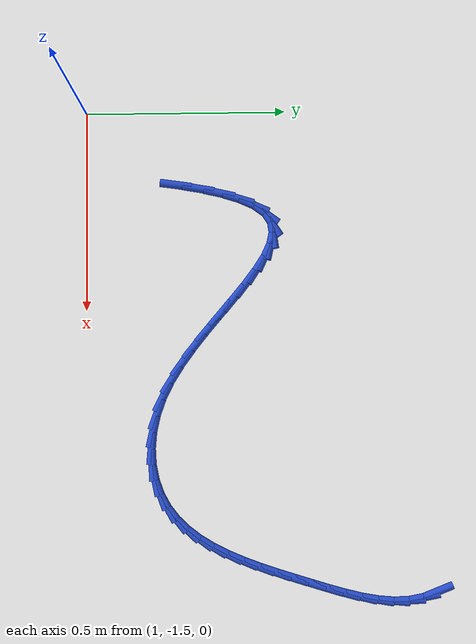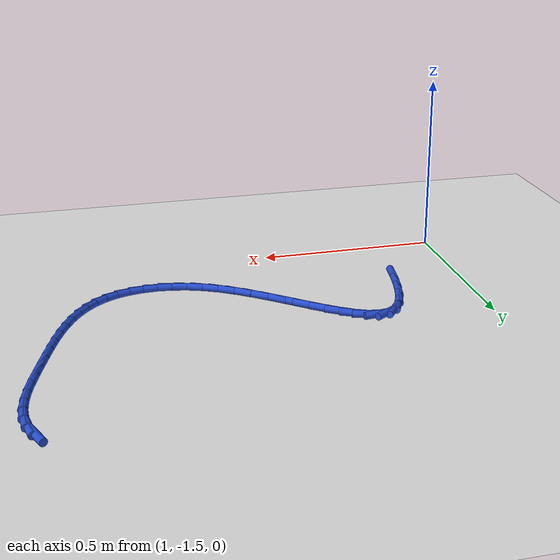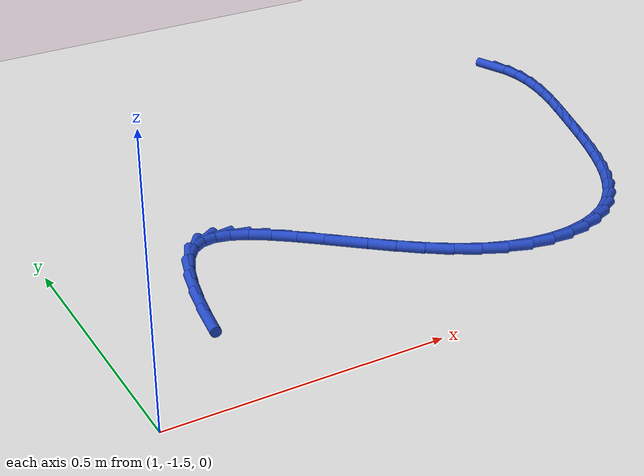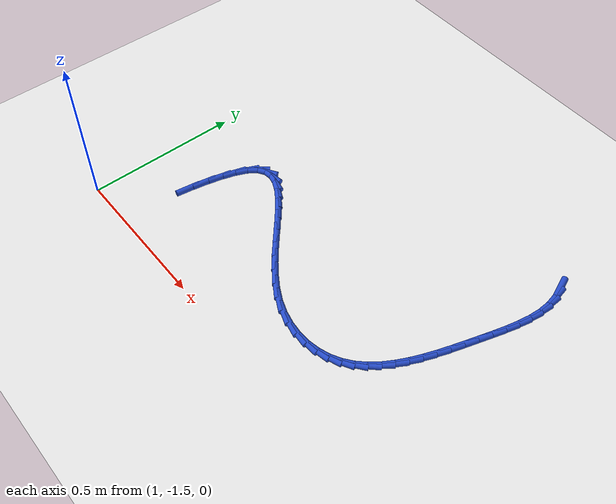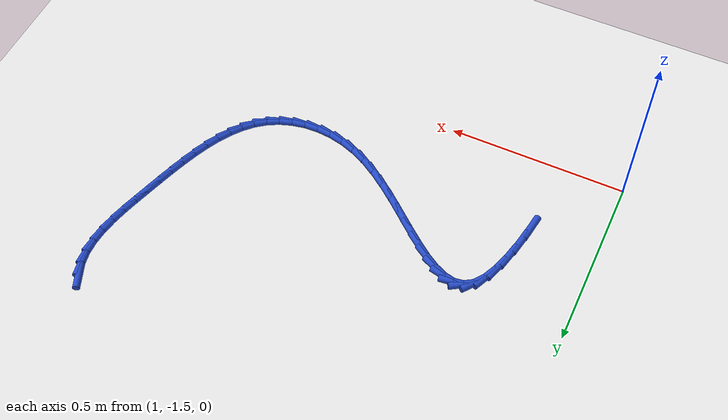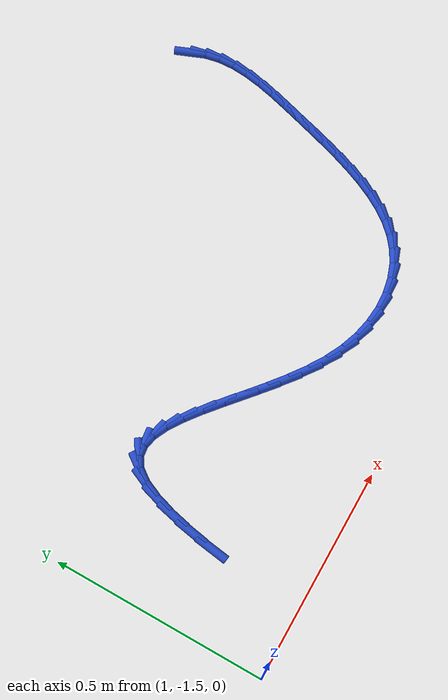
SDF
<sdf version="1.6">
 <world name="default">
  <model name="ground_plane">
   <static>1</static>
   <link name="link">
    <collision name="collision">
     <geometry><plane><normal>0 0 1</normal><size>100 100</size></plane></geometry>
     <surface><friction><ode><mu>100</mu><mu2>50</mu2></ode></friction></surface>
    </collision>
    <visual name="visual">
     <cast_shadows>0</cast_shadows>
     <geometry><plane><normal>0 0 1</normal><size>100 100</size></plane></geometry>
     <material>
      <script><uri>file://media/materials/scripts/gazebo.material</uri><name>Gazebo/WhiteGlow</name></script>
     </material>
    </visual>
   </link>
  </model>
  <model name="line">
   <link name="link_152">
    <pose>2.199923777006037 -0.6427057643925771 0.01 0 1.57 -1.1984474842574275</pose>
    <collision name="collision">
     <geometry><cylinder><radius>0.01</radius><length>0.08</length></cylinder></geometry>
    </collision>
    <visual name="visual">
     <material>
      <script><name>Gazebo/Blue</name><uri>file://media/materials/scripts/gazebo.material</uri></script>
     </material>
     <geometry><cylinder><radius>0.01</radius><length>0.08</length></cylinder></geometry>
    </visual>
   </link>
   <link name="link_153">
    <pose>2.213199202690414 -0.6766958289432661 0.01 0 1.57 -1.3852260153325362</pose>
    <collision name="collision">
     <geometry><cylinder><radius>0.01</radius><length>0.08</length></cylinder></geometry>
    </collision>
    <visual name="visual">
     <material>
      <script><name>Gazebo/Blue</name><uri>file://media/materials/scripts/gazebo.material</uri></script>
     </material>
     <geometry><cylinder><radius>0.01</radius><length>0.08</length></cylinder></geometry>
    </visual>
   </link>
   <link name="link_154">
    <pose>2.2199326378654525 -0.7125634495437034 0.01 0 1.57 -1.5409187809357663</pose>
    <collision name="collision">
     <geometry><cylinder><radius>0.01</radius><length>0.08</length></cylinder></geometry>
    </collision>
    <visual name="visual">
     <material>
      <script><name>Gazebo/Blue</name><uri>file://media/materials/scripts/gazebo.material</uri></script>
     </material>
     <geometry><cylinder><radius>0.01</radius><length>0.08</length></cylinder></geometry>
    </visual>
   </link>
   <link name="link_155">
    <pose>2.2210532144648187 -0.7500579328793634 0.01 0 1.57 1.479511927666274</pose>
    <collision name="collision">
     <geometry><cylinder><radius>0.01</radius><length>0.08</length></cylinder></geometry>
    </collision>
    <visual name="visual">
     <material>
      <script><name>Gazebo/Blue</name><uri>file://media/materials/scripts/gazebo.material</uri></script>
     </material>
     <geometry><cylinder><radius>0.01</radius><length>0.08</length></cylinder></geometry>
    </visual>
   </link>
   <link name="link_156">
    <pose>2.2174951770757256 -0.7889271052083876 0.01 0 1.57 1.3901879549020413</pose>
    <collision name="collision">
     <geometry><cylinder><radius>0.01</radius><length>0.08</length></cylinder></geometry>
    </collision>
    <visual name="visual">
     <material>
      <script><name>Gazebo/Blue</name><uri>file://media/materials/scripts/gazebo.material</uri></script>
     </material>
     <geometry><cylinder><radius>0.01</radius><length>0.08</length></cylinder></geometry>
    </visual>
   </link>
   <link name="link_157">
    <pose>2.2101927702853854 -0.8289187927889139 0.01 0 1.57 1.3281909084340138</pose>
    <collision name="collision">
     <geometry><cylinder><radius>0.01</radius><length>0.08</length></cylinder></geometry>
    </collision>
    <visual name="visual">
     <material>
      <script><name>Gazebo/Blue</name><uri>file://media/materials/scripts/gazebo.material</uri></script>
     </material>
     <geometry><cylinder><radius>0.01</radius><length>0.08</length></cylinder></geometry>
    </visual>
   </link>
   <link name="link_158">
    <pose>2.2000802386810134 -0.869780821879084 0.01 0 1.57 1.28944744842431</pose>
    <collision name="collision">
     <geometry><cylinder><radius>0.01</radius><length>0.08</length></cylinder></geometry>
    </collision>
    <visual name="visual">
     <material>
      <script><name>Gazebo/Blue</name><uri>file://media/materials/scripts/gazebo.material</uri></script>
     </material>
     <geometry><cylinder><radius>0.01</radius><length>0.08</length></cylinder></geometry>
    </visual>
   </link>
   <link name="link_159">
    <pose>2.188091826849822 -0.9112610187370389 0.01 0 1.57 1.2711125223505857</pose>
    <collision name="collision">
     <geometry><cylinder><radius>0.01</radius><length>0.08</length></cylinder></geometry>
    </collision>
    <visual name="visual">
     <material>
      <script><name>Gazebo/Blue</name><uri>file://media/materials/scripts/gazebo.material</uri></script>
     </material>
     <geometry><cylinder><radius>0.01</radius><length>0.08</length></cylinder></geometry>
    </visual>
   </link>
   <link name="link_160">
    <pose>2.1751617793790237 -0.9531072096209183 0.01 0 1.57 1.2675415808974841</pose>
    <collision name="collision">
     <geometry><cylinder><radius>0.01</radius><length>0.08</length></cylinder></geometry>
    </collision>
    <visual name="visual">
     <material>
      <script><name>Gazebo/Blue</name><uri>file://media/materials/scripts/gazebo.material</uri></script>
     </material>
     <geometry><cylinder><radius>0.01</radius><length>0.08</length></cylinder></geometry>
    </visual>
   </link>
   <link name="link_161">
    <pose>2.1620419799848807 -0.9950360876023757 0.01 0 1.57 1.2587841374930577</pose>
    <collision name="collision">
     <geometry><cylinder><radius>0.01</radius><length>0.08</length></cylinder></geometry>
    </collision>
    <visual name="visual">
     <material>
      <script><name>Gazebo/Blue</name><uri>file://media/materials/scripts/gazebo.material</uri></script>
     </material>
     <geometry><cylinder><radius>0.01</radius><length>0.08</length></cylinder></geometry>
    </visual>
   </link>
   <link name="link_162">
    <pose>2.148629691329077 -1.0366184423225218 0.01 0 1.57 1.2387120195674381</pose>
    <collision name="collision">
     <geometry><cylinder><radius>0.01</radius><length>0.08</length></cylinder></geometry>
    </collision>
    <visual name="visual">
     <material>
      <script><name>Gazebo/Blue</name><uri>file://media/materials/scripts/gazebo.material</uri></script>
     </material>
     <geometry><cylinder><radius>0.01</radius><length>0.08</length></cylinder></geometry>
    </visual>
   </link>
   <link name="link_163">
    <pose>2.1345720354745685 -1.0773823586806686 0.01 0 1.57 1.2064106677911457</pose>
    <collision name="collision">
     <geometry><cylinder><radius>0.01</radius><length>0.08</length></cylinder></geometry>
    </collision>
    <visual name="visual">
     <material>
      <script><name>Gazebo/Blue</name><uri>file://media/materials/scripts/gazebo.material</uri></script>
     </material>
     <geometry><cylinder><radius>0.01</radius><length>0.08</length></cylinder></geometry>
    </visual>
   </link>
   <link name="link_164">
    <pose>2.1195161030724035 -1.1168559162133946 0.01 0 1.57 1.1604256946230758</pose>
    <collision name="collision">
     <geometry><cylinder><radius>0.01</radius><length>0.08</length></cylinder></geometry>
    </collision>
    <visual name="visual">
     <material>
      <script><name>Gazebo/Blue</name><uri>file://media/materials/scripts/gazebo.material</uri></script>
     </material>
     <geometry><cylinder><radius>0.01</radius><length>0.08</length></cylinder></geometry>
    </visual>
   </link>
   <link name="link_165">
    <pose>2.1031089847736295 -1.1545671944572784 0.01 0 1.57 1.0987803565133303</pose>
    <collision name="collision">
     <geometry><cylinder><radius>0.01</radius><length>0.08</length></cylinder></geometry>
    </collision>
    <visual name="visual">
     <material>
      <script><name>Gazebo/Blue</name><uri>file://media/materials/scripts/gazebo.material</uri></script>
     </material>
     <geometry><cylinder><radius>0.01</radius><length>0.08</length></cylinder></geometry>
    </visual>
   </link>
   <link name="link_166">
    <pose>2.084997771229296 -1.1900442729488956 0.01 0 1.57 1.0191087078426606</pose>
    <collision name="collision">
     <geometry><cylinder><radius>0.01</radius><length>0.08</length></cylinder></geometry>
    </collision>
    <visual name="visual">
     <material>
      <script><name>Gazebo/Blue</name><uri>file://media/materials/scripts/gazebo.material</uri></script>
     </material>
     <geometry><cylinder><radius>0.01</radius><length>0.08</length></cylinder></geometry>
    </visual>
   </link>
   <link name="link_167">
    <pose>2.0648295530904512 -1.2228152312248268 0.01 0 1.57 0.9190539992017435</pose>
    <collision name="collision">
     <geometry><cylinder><radius>0.01</radius><length>0.08</length></cylinder></geometry>
    </collision>
    <visual name="visual">
     <material>
      <script><name>Gazebo/Blue</name><uri>file://media/materials/scripts/gazebo.material</uri></script>
     </material>
     <geometry><cylinder><radius>0.01</radius><length>0.08</length></cylinder></geometry>
    </visual>
   </link>
   <link name="link_168">
    <pose>2.042251421008143 -1.2524081488216485 0.01 0 1.57 0.7971362194378347</pose>
    <collision name="collision">
     <geometry><cylinder><radius>0.01</radius><length>0.08</length></cylinder></geometry>
    </collision>
    <visual name="visual">
     <material>
      <script><name>Gazebo/Blue</name><uri>file://media/materials/scripts/gazebo.material</uri></script>
     </material>
     <geometry><cylinder><radius>0.01</radius><length>0.08</length></cylinder></geometry>
    </visual>
   </link>
   <link name="link_169">
    <pose>2.0169104656334205 -1.2783511052759402 0.01 0 1.57 0.654177459193393</pose>
    <collision name="collision">
     <geometry><cylinder><radius>0.01</radius><length>0.08</length></cylinder></geometry>
    </collision>
    <visual name="visual">
     <material>
      <script><name>Gazebo/Blue</name><uri>file://media/materials/scripts/gazebo.material</uri></script>
     </material>
     <geometry><cylinder><radius>0.01</radius><length>0.08</length></cylinder></geometry>
    </visual>
   </link>
   <link name="link_170">
    <pose>1.9884537776173317 -1.3001721801242787 0.01 0 1.57 0.4958347117290239</pose>
    <collision name="collision">
     <geometry><cylinder><radius>0.01</radius><length>0.08</length></cylinder></geometry>
    </collision>
    <visual name="visual">
     <material>
      <script><name>Gazebo/Blue</name><uri>file://media/materials/scripts/gazebo.material</uri></script>
     </material>
     <geometry><cylinder><radius>0.01</radius><length>0.08</length></cylinder></geometry>
    </visual>
   </link>
   <link name="link_171">
    <pose>1.9565792829629636 -1.3174132961766767 0.01 0 1.57 0.33865648070268445</pose>
    <collision name="collision">
     <geometry><cylinder><radius>0.01</radius><length>0.08</length></cylinder></geometry>
    </collision>
    <visual name="visual">
     <material>
      <script><name>Gazebo/Blue</name><uri>file://media/materials/scripts/gazebo.material</uri></script>
     </material>
     <geometry><cylinder><radius>0.01</radius><length>0.08</length></cylinder></geometry>
    </visual>
   </link>
   <link name="link_172">
    <pose>1.9215199927199724 -1.329762088396462 0.01 0 1.57 0.18955719713161817</pose>
    <collision name="collision">
     <geometry><cylinder><radius>0.01</radius><length>0.08</length></cylinder></geometry>
    </collision>
    <visual name="visual">
     <material>
      <script><name>Gazebo/Blue</name><uri>file://media/materials/scripts/gazebo.material</uri></script>
     </material>
     <geometry><cylinder><radius>0.01</radius><length>0.08</length></cylinder></geometry>
    </visual>
   </link>
   <link name="link_173">
    <pose>1.8838293302894034 -1.3369934451171828 0.01 0 1.57 0.04749405639401297</pose>
    <collision name="collision">
     <geometry><cylinder><radius>0.01</radius><length>0.08</length></cylinder></geometry>
    </collision>
    <visual name="visual">
     <material>
      <script><name>Gazebo/Blue</name><uri>file://media/materials/scripts/gazebo.material</uri></script>
     </material>
     <geometry><cylinder><radius>0.01</radius><length>0.08</length></cylinder></geometry>
    </visual>
   </link>
   <link name="link_174">
    <pose>1.8440650478791876 -1.3388834334752304 0.01 0 1.57 -0.08879927619124017</pose>
    <collision name="collision">
     <geometry><cylinder><radius>0.01</radius><length>0.08</length></cylinder></geometry>
    </collision>
    <visual name="visual">
     <material>
      <script><name>Gazebo/Blue</name><uri>file://media/materials/scripts/gazebo.material</uri></script>
     </material>
     <geometry><cylinder><radius>0.01</radius><length>0.08</length></cylinder></geometry>
    </visual>
   </link>
   <link name="link_175">
    <pose>1.8027848976972556 -1.3352081206069957 0.01 0 1.57 -0.22043401026828016</pose>
    <collision name="collision">
     <geometry><cylinder><radius>0.01</radius><length>0.08</length></cylinder></geometry>
    </collision>
    <visual name="visual">
     <material>
      <script><name>Gazebo/Blue</name><uri>file://media/materials/scripts/gazebo.material</uri></script>
     </material>
     <geometry><cylinder><radius>0.01</radius><length>0.08</length></cylinder></geometry>
    </visual>
   </link>
   <link name="link_176">
    <pose>1.760546631951538 -1.325743573648869 0.01 0 1.57 -0.34820659756676</pose>
    <collision name="collision">
     <geometry><cylinder><radius>0.01</radius><length>0.08</length></cylinder></geometry>
    </collision>
    <visual name="visual">
     <material>
      <script><name>Gazebo/Blue</name><uri>file://media/materials/scripts/gazebo.material</uri></script>
     </material>
     <geometry><cylinder><radius>0.01</radius><length>0.08</length></cylinder></geometry>
    </visual>
   </link>
   <link name="link_177">
    <pose>1.7179080028499667 -1.3102658597372412 0.01 0 1.57 -0.47015432482930003</pose>
    <collision name="collision">
     <geometry><cylinder><radius>0.01</radius><length>0.08</length></cylinder></geometry>
    </collision>
    <visual name="visual">
     <material>
      <script><name>Gazebo/Blue</name><uri>file://media/materials/scripts/gazebo.material</uri></script>
     </material>
     <geometry><cylinder><radius>0.01</radius><length>0.08</length></cylinder></geometry>
    </visual>
   </link>
   <link name="link_178">
    <pose>1.6754032540799595 -1.2886666441568868 0.01 0 1.57 -0.5671772902579456</pose>
    <collision name="collision">
     <geometry><cylinder><radius>0.01</radius><length>0.08</length></cylinder></geometry>
    </collision>
    <visual name="visual">
     <material>
      <script><name>Gazebo/Blue</name><uri>file://media/materials/scripts/gazebo.material</uri></script>
     </material>
     <geometry><cylinder><radius>0.01</radius><length>0.08</length></cylinder></geometry>
    </visual>
   </link>
   <link name="link_179">
    <pose>1.633354288482217 -1.261881733132622 0.01 0 1.57 -0.6348258227500918</pose>
    <collision name="collision">
     <geometry><cylinder><radius>0.01</radius><length>0.08</length></cylinder></geometry>
    </collision>
    <visual name="visual">
     <material>
      <script><name>Gazebo/Blue</name><uri>file://media/materials/scripts/gazebo.material</uri></script>
     </material>
     <geometry><cylinder><radius>0.01</radius><length>0.08</length></cylinder></geometry>
    </visual>
   </link>
   <link name="link_180">
    <pose>1.5919703106179386 -1.231401102703113 0.01 0 1.57 -0.678830861616893</pose>
    <collision name="collision">
     <geometry><cylinder><radius>0.01</radius><length>0.08</length></cylinder></geometry>
    </collision>
    <visual name="visual">
     <material>
      <script><name>Gazebo/Blue</name><uri>file://media/materials/scripts/gazebo.material</uri></script>
     </material>
     <geometry><cylinder><radius>0.01</radius><length>0.08</length></cylinder></geometry>
    </visual>
   </link>
   <link name="link_181">
    <pose>1.551459488403845 -1.198719826385705 0.01 0 1.57 -0.7026030719679729</pose>
    <collision name="collision">
     <geometry><cylinder><radius>0.01</radius><length>0.08</length></cylinder></geometry>
    </collision>
    <visual name="visual">
     <material>
      <script><name>Gazebo/Blue</name><uri>file://media/materials/scripts/gazebo.material</uri></script>
     </material>
     <geometry><cylinder><radius>0.01</radius><length>0.08</length></cylinder></geometry>
    </visual>
   </link>
   <link name="link_182">
    <pose>1.512029989756661 -1.1653329776977466 0.01 0 1.57 -0.7072024484938857</pose>
    <collision name="collision">
     <geometry><cylinder><radius>0.01</radius><length>0.08</length></cylinder></geometry>
    </collision>
    <visual name="visual">
     <material>
      <script><name>Gazebo/Blue</name><uri>file://media/materials/scripts/gazebo.material</uri></script>
     </material>
     <geometry><cylinder><radius>0.01</radius><length>0.08</length></cylinder></geometry>
    </visual>
   </link>
   <link name="link_183">
    <pose>1.4738899825931073 -1.1327356301565825 0.01 0 1.57 -0.6911436847126994</pose>
    <collision name="collision">
     <geometry><cylinder><radius>0.01</radius><length>0.08</length></cylinder></geometry>
    </collision>
    <visual name="visual">
     <material>
      <script><name>Gazebo/Blue</name><uri>file://media/materials/scripts/gazebo.material</uri></script>
     </material>
     <geometry><cylinder><radius>0.01</radius><length>0.08</length></cylinder></geometry>
    </visual>
   </link>
   <link name="link_184">
    <pose>1.4372476348299068 -1.1024228572795602 0.01 0 1.57 -0.6495323319958317</pose>
    <collision name="collision">
     <geometry><cylinder><radius>0.01</radius><length>0.08</length></cylinder></geometry>
    </collision>
    <visual name="visual">
     <material>
      <script><name>Gazebo/Blue</name><uri>file://media/materials/scripts/gazebo.material</uri></script>
     </material>
     <geometry><cylinder><radius>0.01</radius><length>0.08</length></cylinder></geometry>
    </visual>
   </link>
   <link name="link_185">
    <pose>1.402311114383781 -1.0758897325840242 0.01 0 1.57 -0.5719722548857897</pose>
    <collision name="collision">
     <geometry><cylinder><radius>0.01</radius><length>0.08</length></cylinder></geometry>
    </collision>
    <visual name="visual">
     <material>
      <script><name>Gazebo/Blue</name><uri>file://media/materials/scripts/gazebo.material</uri></script>
     </material>
     <geometry><cylinder><radius>0.01</radius><length>0.08</length></cylinder></geometry>
    </visual>
   </link>
   <link name="link_186">
    <pose>1.3692885891714517 -1.054631329587322 0.01 0 1.57 -0.43844435660902614</pose>
    <collision name="collision">
     <geometry><cylinder><radius>0.01</radius><length>0.08</length></cylinder></geometry>
    </collision>
    <visual name="visual">
     <material>
      <script><name>Gazebo/Blue</name><uri>file://media/materials/scripts/gazebo.material</uri></script>
     </material>
     <geometry><cylinder><radius>0.01</radius><length>0.08</length></cylinder></geometry>
    </visual>
   </link>
   <link name="link_187">
    <pose>1.338388227109642 -1.0401427218067991 0.01 0 1.57 -0.21449054472111354</pose>
    <collision name="collision">
     <geometry><cylinder><radius>0.01</radius><length>0.08</length></cylinder></geometry>
    </collision>
    <visual name="visual">
     <material>
      <script><name>Gazebo/Blue</name><uri>file://media/materials/scripts/gazebo.material</uri></script>
     </material>
     <geometry><cylinder><radius>0.01</radius><length>0.08</length></cylinder></geometry>
    </visual>
   </link>
   <link name="link_188">
    <pose>1.3098181961150726 -1.0339189827598025 0.01 0 1.57 0.1350166144861078</pose>
    <collision name="collision">
     <geometry><cylinder><radius>0.01</radius><length>0.08</length></cylinder></geometry>
    </collision>
    <visual name="visual">
     <material>
      <script><name>Gazebo/Blue</name><uri>file://media/materials/scripts/gazebo.material</uri></script>
     </material>
     <geometry><cylinder><radius>0.01</radius><length>0.08</length></cylinder></geometry>
    </visual>
   </link>
   <link name="link_189">
    <pose>1.2837866641044673 -1.0374551859636778 0.01 0 1.57 0.565921128560431</pose>
    <collision name="collision">
     <geometry><cylinder><radius>0.01</radius><length>0.08</length></cylinder></geometry>
    </collision>
    <visual name="visual">
     <material>
      <script><name>Gazebo/Blue</name><uri>file://media/materials/scripts/gazebo.material</uri></script>
     </material>
     <geometry><cylinder><radius>0.01</radius><length>0.08</length></cylinder></geometry>
    </visual>
   </link>
   <link name="link_190">
    <pose>1.2605017989945482 -1.0522464049357718 0.01 0 1.57 0.9323527298597124</pose>
    <collision name="collision">
     <geometry><cylinder><radius>0.01</radius><length>0.08</length></cylinder></geometry>
    </collision>
    <visual name="visual">
     <material>
      <script><name>Gazebo/Blue</name><uri>file://media/materials/scripts/gazebo.material</uri></script>
     </material>
     <geometry><cylinder><radius>0.01</radius><length>0.08</length></cylinder></geometry>
    </visual>
   </link>
   <link name="link_191">
    <pose>1.2401596897441438 -1.079656938982864 0.01 0 1.57 1.1510844594122185</pose>
    <collision name="collision">
     <geometry><cylinder><radius>0.01</radius><length>0.08</length></cylinder></geometry>
    </collision>
    <visual name="visual">
     <material>
      <script><name>Gazebo/Blue</name><uri>file://media/materials/scripts/gazebo.material</uri></script>
     </material>
     <geometry><cylinder><radius>0.01</radius><length>0.08</length></cylinder></geometry>
    </visual>
   </link>
   <link name="link_192">
    <pose>1.2227389850065395 -1.1186969452285633 0.01 0 1.57 1.2713270410856246</pose>
    <collision name="collision">
     <geometry><cylinder><radius>0.01</radius><length>0.08</length></cylinder></geometry>
    </collision>
    <visual name="visual">
     <material>
      <script><name>Gazebo/Blue</name><uri>file://media/materials/scripts/gazebo.material</uri></script>
     </material>
     <geometry><cylinder><radius>0.01</radius><length>0.08</length></cylinder></geometry>
    </visual>
   </link>
   <link name="link_193">
    <pose>1.2080299336756302 -1.1663368493871507 0.01 0 1.57 1.344896798794242</pose>
    <collision name="collision">
     <geometry><cylinder><radius>0.01</radius><length>0.08</length></cylinder></geometry>
    </collision>
    <visual name="visual">
     <material>
      <script><name>Gazebo/Blue</name><uri>file://media/materials/scripts/gazebo.material</uri></script>
     </material>
     <geometry><cylinder><radius>0.01</radius><length>0.08</length></cylinder></geometry>
    </visual>
   </link>
   <link name="link_194">
    <pose>1.195816551240901 -1.2194795905115454 0.01 0 1.57 1.3938376558262624</pose>
    <collision name="collision">
     <geometry><cylinder><radius>0.01</radius><length>0.08</length></cylinder></geometry>
    </collision>
    <visual name="visual">
     <material>
      <script><name>Gazebo/Blue</name><uri>file://media/materials/scripts/gazebo.material</uri></script>
     </material>
     <geometry><cylinder><radius>0.01</radius><length>0.08</length></cylinder></geometry>
    </visual>
   </link>
   <link name="link_195">
    <pose>1.1858828531918375 -1.2750281076546683 0.01 0 1.57 1.4283053134676789</pose>
    <collision name="collision">
     <geometry><cylinder><radius>0.01</radius><length>0.08</length></cylinder></geometry>
    </collision>
    <visual name="visual">
     <material>
      <script><name>Gazebo/Blue</name><uri>file://media/materials/scripts/gazebo.material</uri></script>
     </material>
     <geometry><cylinder><radius>0.01</radius><length>0.08</length></cylinder></geometry>
    </visual>
   </link>
  </model>
 </world>
</sdf>
